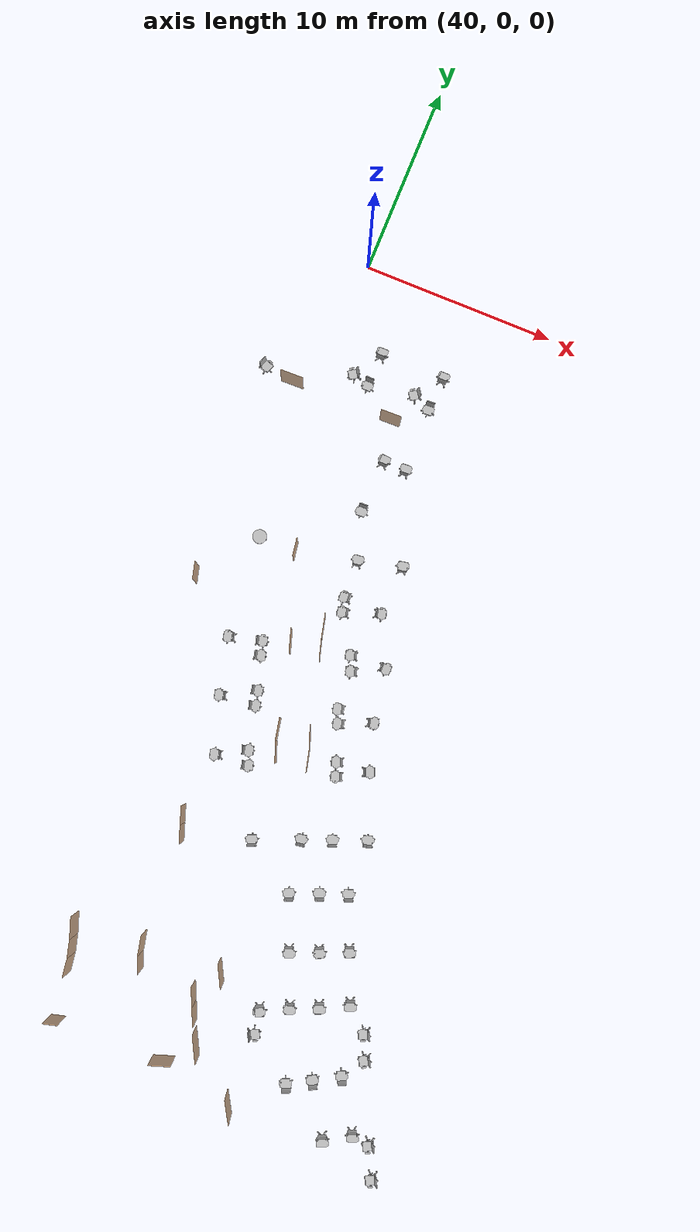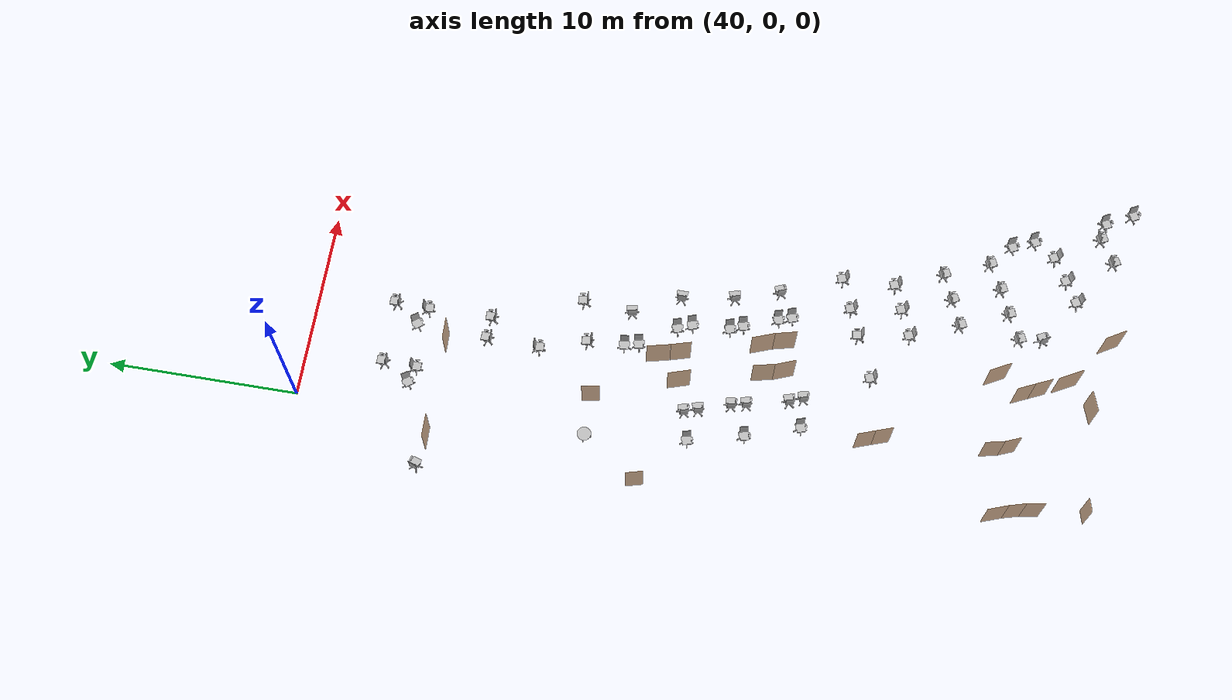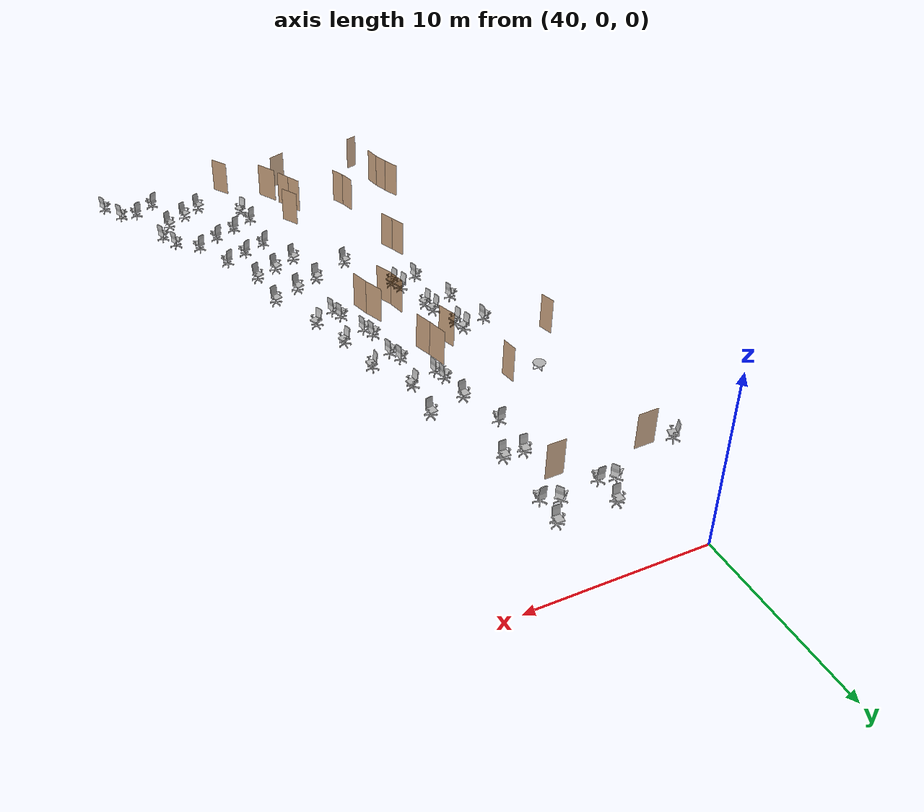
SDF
<sdf version="1.7">
 <world name="world">
  <include><uri>model://sun</uri></include>
  <include>
   <name>OpenRobotics/OfficeChairBlue_85</name>
   <uri>model://OfficeChairBlue</uri>
   <pose>57.111681146748666 -41.9795819682517 0.0 0 0 -1.11</pose>
   <static>True</static>
  </include>
  <include>
   <name>OpenRobotics/OfficeChairBlue_86</name>
   <uri>model://OfficeChairBlue</uri>
   <pose>56.39326485802381 -40.56363162704247 0.0 0 0 -1.0903</pose>
   <static>True</static>
  </include>
  <include>
   <name>OpenRobotics/OfficeChairBlue_87</name>
   <uri>model://OfficeChairBlue</uri>
   <pose>54.35365418178308 -41.21535948390257 0.0 0 0 0.4537</pose>
   <static>True</static>
  </include>
  <include>
   <name>OpenRobotics/OfficeChairBlue_88</name>
   <uri>model://OfficeChairBlue</uri>
   <pose>49.415005310909876 -37.72061620597989 0.0 0 0 2.0531</pose>
   <static>True</static>
  </include>
  <include>
   <name>OpenRobotics/OfficeChairBlue_89</name>
   <uri>model://OfficeChairBlue</uri>
   <pose>50.50323926724837 -36.04217840062959 0.0 0 0 0.344</pose>
   <static>True</static>
  </include>
  <include>
   <name>OpenRobotics/OfficeChairBlue_90</name>
   <uri>model://OfficeChairBlue</uri>
   <pose>51.8404882772502 -35.47959299309712 0.0 0 0 0.4023</pose>
   <static>True</static>
  </include>
  <include>
   <name>OpenRobotics/OfficeChairBlue_91</name>
   <uri>model://OfficeChairBlue</uri>
   <pose>54.717858345031 -36.91833416203117 0.0 0 0 -1.0804</pose>
   <static>True</static>
  </include>
  <include>
   <name>OpenRobotics/OfficeChairBlue_92</name>
   <uri>model://OfficeChairBlue</uri>
   <pose>54.00775004276741 -37.923488253757014 0.0 0 0 -2.6898</pose>
   <static>True</static>
  </include>
  <include>
   <name>OpenRobotics/OfficeChairBlue_93</name>
   <uri>model://OfficeChairBlue</uri>
   <pose>52.771993191697796 -38.6429149732677 0.0 0 0 -2.6684</pose>
   <static>True</static>
  </include>
  <include>
   <name>OpenRobotics/OfficeChairBlue_94</name>
   <uri>model://OfficeChairBlue</uri>
   <pose>49.45778021417666 -33.55505915635365 0.0 0 0 0.4189</pose>
   <static>True</static>
  </include>
  <include>
   <name>OpenRobotics/OfficeChairBlue_95</name>
   <uri>model://OfficeChairBlue</uri>
   <pose>50.84644892416849 -33.01290690471241 0.0 0 0 0.4432</pose>
   <static>True</static>
  </include>
  <include>
   <name>OpenRobotics/OfficeChairBlue_96</name>
   <uri>model://OfficeChairBlue</uri>
   <pose>52.19537402325103 -32.43101104216186 0.0 0 0 0.4397</pose>
   <static>True</static>
  </include>
  <include>
   <name>OpenRobotics/OfficeChairBlue_97</name>
   <uri>model://OfficeChairBlue</uri>
   <pose>48.320484229681774 -30.830713217582392 0.0 0 0 -2.7725</pose>
   <static>True</static>
  </include>
  <include>
   <name>OpenRobotics/OfficeChairBlue_98</name>
   <uri>model://OfficeChairBlue</uri>
   <pose>49.709040669586294 -30.26206522533495 0.0 0 0 -2.7775</pose>
   <static>True</static>
  </include>
  <include>
   <name>OpenRobotics/OfficeChairBlue_99</name>
   <uri>model://OfficeChairBlue</uri>
   <pose>51.04483016845304 -29.75954431451569 0.0 0 0 -2.7813</pose>
   <static>True</static>
  </include>
  <include>
   <name>OpenRobotics/OfficeChairBlue_100</name>
   <uri>model://OfficeChairBlue</uri>
   <pose>49.316993524684406 -27.619339640041254 0.0 0 0 -2.7998</pose>
   <static>True</static>
  </include>
  <include>
   <name>OpenRobotics/OfficeChairBlue_101</name>
   <uri>model://OfficeChairBlue</uri>
   <pose>50.946257031791 -26.985799537326088 0.0 0 0 -2.8187</pose>
   <static>True</static>
  </include>
  <include>
   <name>OpenRobotics/OfficeChairBlue_102</name>
   <uri>model://OfficeChairBlue</uri>
   <pose>47.895991029546025 -28.16239005238101 0.0 0 0 -2.9932</pose>
   <static>True</static>
  </include>
  <include>
   <name>OpenRobotics/OfficeChairBlue_103</name>
   <uri>model://OfficeChairBlue</uri>
   <pose>45.633187419724266 -29.10377473451227 0.0 0 0 -2.7887</pose>
   <static>True</static>
  </include>
  <include>
   <name>OpenRobotics/OfficeChairBlue_133</name>
   <uri>model://OfficeChairBlue</uri>
   <pose>42.39733896314859 -3.9757083319775814 0.0 0 0 -3.1416</pose>
   <static>True</static>
  </include>
  <include>
   <name>OpenRobotics/OfficeChairBlue_134</name>
   <uri>model://OfficeChairBlue</uri>
   <pose>45.758593107254455 -3.9657162942065995 0.0 0 0 3.1378</pose>
   <static>True</static>
  </include>
  <include>
   <name>OpenRobotics/OfficeChairBlue_135</name>
   <uri>model://OfficeChairBlue</uri>
   <pose>47.40873885060152 -16.38177752039356 0.0 0 0 1.7846</pose>
   <static>True</static>
  </include>
  <include>
   <name>OpenRobotics/OfficeChairBlue_136</name>
   <uri>model://OfficeChairBlue</uri>
   <pose>49.82467885952013 -23.873560446883566 0.0 0 0 1.9757</pose>
   <static>True</static>
  </include>
  <include>
   <name>OpenRobotics/OfficeChairBlue_137</name>
   <uri>model://OfficeChairBlue</uri>
   <pose>49.107834352017676 -21.567532853445762 0.0 0 0 1.8417</pose>
   <static>True</static>
  </include>
  <include>
   <name>OpenRobotics/OfficeChairBlue_138</name>
   <uri>model://OfficeChairBlue</uri>
   <pose>48.658641732672756 -18.860925588470174 0.0 0 0 1.5708</pose>
   <static>True</static>
  </include>
  <include>
   <name>OpenRobotics/OfficeChairBlue_139</name>
   <uri>model://OfficeChairBlue</uri>
   <pose>40.666358756935146 -20.343227551282215 0.0 0 0 -1.3468</pose>
   <static>True</static>
  </include>
  <include>
   <name>OpenRobotics/OfficeChairBlue_140</name>
   <uri>model://OfficeChairBlue</uri>
   <pose>41.3839891550488 -23.201736244394187 0.0 0 0 -1.312</pose>
   <static>True</static>
  </include>
  <include>
   <name>OpenRobotics/OfficeChairBlue_141</name>
   <uri>model://OfficeChairBlue</uri>
   <pose>42.30494068128884 -26.000517251054898 0.0 0 0 -1.2952</pose>
   <static>True</static>
  </include>
  <include>
   <name>OpenRobotics/OfficeChairBlue_142</name>
   <uri>model://OfficeChairBlue</uri>
   <pose>44.58267621272341 -9.063676418978936 0.0 0 0 3.0971</pose>
   <static>True</static>
  </include>
  <include>
   <name>OpenRobotics/OfficeChairBlue_143</name>
   <uri>model://OfficeChairBlue</uri>
   <pose>45.7511832814917 -9.097357445173259 0.0 0 0 -3.1278</pose>
   <static>True</static>
  </include>
  <include>
   <name>OpenRobotics/OfficeChairBlue_144</name>
   <uri>model://OfficeChairBlue</uri>
   <pose>44.49274787278458 -12.018737387181297 0.0 0 0 0.0186</pose>
   <static>True</static>
  </include>
  <include>
   <name>OpenRobotics/OfficeChairBlue_145</name>
   <uri>model://OfficeChairBlue</uri>
   <pose>45.24978507154558 -14.284684559447859 0.0 0 0 -3.0086</pose>
   <static>True</static>
  </include>
  <include>
   <name>OpenRobotics/OfficeChairBlue_146</name>
   <uri>model://OfficeChairBlue</uri>
   <pose>47.46071990102809 -13.726140875058713 0.0 0 0 -2.9772</pose>
   <static>True</static>
  </include>
  <include>
   <name>OpenRobotics/OfficeChairBlue_165</name>
   <uri>model://OfficeChairBlue</uri>
   <pose>37.277822981611884 -6.9048349100103135 0.0 0 0 1.2406</pose>
   <static>True</static>
  </include>
  <include>
   <name>OpenRobotics/CoffeeTable_3</name>
   <uri>model://CoffeeTable</uri>
   <pose>40.225474124051495 -15.07675002545096 0.0 0 0 1.5708</pose>
   <static>True</static>
  </include>
  <include>
   <name>OpenRobotics/OfficeChairBlue_180</name>
   <uri>model://OfficeChairBlue</uri>
   <pose>41.40509593146391 -5.639214215715066 0.0 0 0 -0.9828</pose>
   <static>True</static>
  </include>
  <include>
   <name>OpenRobotics/OfficeChairBlue_181</name>
   <uri>model://OfficeChairBlue</uri>
   <pose>42.352543198310144 -5.931677793169082 0.0 0 0 -0.019</pose>
   <static>True</static>
  </include>
  <include>
   <name>OpenRobotics/OfficeChairBlue_182</name>
   <uri>model://OfficeChairBlue</uri>
   <pose>44.66856282951893 -5.47552442841067 0.0 0 0 -0.9531</pose>
   <static>True</static>
  </include>
  <include>
   <name>OpenRobotics/OfficeChairBlue_183</name>
   <uri>model://OfficeChairBlue</uri>
   <pose>45.674502811855966 -5.931677793169082 0.0 0 0 0.0478</pose>
   <static>True</static>
  </include>
  <include>
   <name>OpenRobotics/OfficeChairBlue_184</name>
   <uri>model://OfficeChairBlue</uri>
   <pose>45.28077161564436 -16.319804432196012 0.0 0 0 -1.4944</pose>
   <static>True</static>
  </include>
  <include>
   <name>OpenRobotics/OfficeChairBlue_185</name>
   <uri>model://OfficeChairBlue</uri>
   <pose>45.46669088023701 -17.063481490566605 0.0 0 0 -1.3668</pose>
   <static>True</static>
  </include>
  <include>
   <name>OpenRobotics/OfficeChairBlue_186</name>
   <uri>model://OfficeChairBlue</uri>
   <pose>46.67078756668397 -18.911222587587023 0.0 0 0 -1.3102</pose>
   <static>True</static>
  </include>
  <include>
   <name>OpenRobotics/OfficeChairBlue_187</name>
   <uri>model://OfficeChairBlue</uri>
   <pose>46.97953030679857 -19.65725731779122 0.0 0 0 -1.2809</pose>
   <static>True</static>
  </include>
  <include>
   <name>OpenRobotics/OfficeChairBlue_188</name>
   <uri>model://OfficeChairBlue</uri>
   <pose>47.09528076681972 -21.62523967832536 0.0 0 0 -1.3316</pose>
   <static>True</static>
  </include>
  <include>
   <name>OpenRobotics/OfficeChairBlue_189</name>
   <uri>model://OfficeChairBlue</uri>
   <pose>47.365402596898164 -22.294032588457252 0.0 0 0 -1.287</pose>
   <static>True</static>
  </include>
  <include>
   <name>OpenRobotics/OfficeChairBlue_190</name>
   <uri>model://OfficeChairBlue</uri>
   <pose>48.021396717076215 -24.069022668897937 0.0 0 0 -1.2641</pose>
   <static>True</static>
  </include>
  <include>
   <name>OpenRobotics/OfficeChairBlue_191</name>
   <uri>model://OfficeChairBlue</uri>
   <pose>48.25289763711851 -24.750838909158297 0.0 0 0 -1.2566</pose>
   <static>True</static>
  </include>
  <include>
   <name>OpenRobotics/OfficeChairBlue_192</name>
   <uri>model://OfficeChairBlue</uri>
   <pose>42.42619237558839 -19.875959447879676 0.0 0 0 1.8417</pose>
   <static>True</static>
  </include>
  <include>
   <name>OpenRobotics/OfficeChairBlue_193</name>
   <uri>model://OfficeChairBlue</uri>
   <pose>42.63198344563568 -20.59617205800156 0.0 0 0 1.7943</pose>
   <static>True</static>
  </include>
  <include>
   <name>OpenRobotics/OfficeChairBlue_194</name>
   <uri>model://OfficeChairBlue</uri>
   <pose>43.17222710579259 -22.25552394850841 0.0 0 0 1.7455</pose>
   <static>True</static>
  </include>
  <include>
   <name>OpenRobotics/OfficeChairBlue_195</name>
   <uri>model://OfficeChairBlue</uri>
   <pose>43.33939726580373 -23.001446408625295 0.0 0 0 1.8158</pose>
   <static>True</static>
  </include>
  <include>
   <name>OpenRobotics/OfficeChairBlue_196</name>
   <uri>model://OfficeChairBlue</uri>
   <pose>43.86684213600679 -25.16242104925289 0.0 0 0 1.8623</pose>
   <static>True</static>
  </include>
  <include>
   <name>OpenRobotics/OfficeChairBlue_197</name>
   <uri>model://OfficeChairBlue</uri>
   <pose>44.13696396608524 -25.85692380937978 0.0 0 0 1.8314</pose>
   <static>True</static>
  </include>
  <include>
   <name>OpenRobotics/OfficeChairBlue_198</name>
   <uri>model://OfficeChairBlue</uri>
   <pose>49.184402551566095 -36.69693754984718 0.0 0 0 0.406</pose>
   <static>True</static>
  </include>
  <include>
   <name>OpenRobotics/OfficeChairBlue_199</name>
   <uri>model://OfficeChairBlue</uri>
   <pose>53.186943434411816 -34.78789698515309 0.0 0 0 0.3858</pose>
   <static>True</static>
  </include>
  <include>
   <name>OpenRobotics/OfficeChairBlue_200</name>
   <uri>model://OfficeChairBlue</uri>
   <pose>54.21994050779163 -35.765544905486905 0.0 0 0 -1.141</pose>
   <static>True</static>
  </include>
  <include>
   <name>OpenRobotics/OfficeChairBlue_201</name>
   <uri>model://OfficeChairBlue</uri>
   <pose>51.63885120043354 -39.28015998886424 0.0 0 0 -2.6802</pose>
   <static>True</static>
  </include>
  <include>
   <name>OpenRobotics/OfficeChairBlue_207</name>
   <uri>model://OfficeChairBlue</uri>
   <pose>55.610180999005856 -40.46921248361107 0.0 0 0 0.422</pose>
   <static>True</static>
  </include>
  <model name="door_24">
   <pose>40.148232303979185 -40.654626532810795 0.0 0 0 0.26191786335359124</pose>
   <link name="right">
    <pose>0 0 1.11 0 0 0</pose>
    <visual name="right_visual">
     <geometry><box><size>0.7101873379706063 0.03 2.2</size></box></geometry>
     <material><ambient>0.5 0.25 0 0.6</ambient><diffuse>0.5 0.25 0 0.6</diffuse></material>
    </visual>
    <collision name="right_collision">
     <geometry><box><size>0.7101873379706063 0.03 2.2</size></box></geometry>
     <surface><contact><collide_bitmask>0x02</collide_bitmask></contact></surface>
    </collision>
    <inertial>
     <mass>50.0</mass>
     <inertia><ixx>20.17041666666667</ixx><iyy>22.268191895890737</iyy><izz>2.1052752292240675</izz></inertia>
    </inertial>
   </link>
   <joint name="right_joint" type="revolute">
    <parent>world</parent>
    <child>right</child>
    <axis><xyz>0 0 -1</xyz><limit><lower>0</lower><upper>1.57</upper></limit></axis>
    <pose>0.36009366898530315 0 0 0 0 0</pose>
   </joint>
   <plugin name="door" filename="libdoor.so">
    <v_max_door>0.5</v_max_door>
    <a_max_door>0.3</a_max_door>
    <a_nom_door>0.15</a_nom_door>
    <dx_min_door>0.01</dx_min_door>
    <f_max_door>500.0</f_max_door>
    <door name="door_24" type="SwingDoor" left_joint_name="empty_joint" right_joint_name="right_joint"/>
   </plugin>
  </model>
  <model name="door_25">
   <pose>39.76634560197925 -37.99208527710611 0.0 0 0 -1.4198516233371643</pose>
   <link name="right">
    <pose>0 0 1.11 0 0 0</pose>
    <visual name="right_visual">
     <geometry><box><size>0.9464136126741728 0.03 2.2</size></box></geometry>
     <material><ambient>0.5 0.25 0 0.6</ambient><diffuse>0.5 0.25 0 0.6</diffuse></material>
    </visual>
    <collision name="right_collision">
     <geometry><box><size>0.9464136126741728 0.03 2.2</size></box></geometry>
     <surface><contact><collide_bitmask>0x02</collide_bitmask></contact></surface>
    </collision>
    <inertial>
     <mass>50.0</mass>
     <inertia><ixx>20.17041666666667</ixx><iyy>23.898744692729085</iyy><izz>3.7358280260624133</izz></inertia>
    </inertial>
   </link>
   <joint name="right_joint" type="revolute">
    <parent>world</parent>
    <child>right</child>
    <axis><xyz>0 0 -1</xyz><limit><lower>0</lower><upper>1.57</upper></limit></axis>
    <pose>0.4782068063370864 0 0 0 0 0</pose>
   </joint>
   <plugin name="door" filename="libdoor.so">
    <v_max_door>0.5</v_max_door>
    <a_max_door>0.3</a_max_door>
    <a_nom_door>0.15</a_nom_door>
    <dx_min_door>0.01</dx_min_door>
    <f_max_door>500.0</f_max_door>
    <door name="door_25" type="SwingDoor" left_joint_name="empty_joint" right_joint_name="right_joint"/>
   </plugin>
  </model>
  <model name="door_26">
   <pose>39.57110792013951 -37.08769358874495 0.0 0 0 -1.2924794906765693</pose>
   <link name="right">
    <pose>0 0 1.11 0 0 0</pose>
    <visual name="right_visual">
     <geometry><box><size>0.8877924473050325 0.03 2.2</size></box></geometry>
     <material><ambient>0.5 0.25 0 0.6</ambient><diffuse>0.5 0.25 0 0.6</diffuse></material>
    </visual>
    <collision name="right_collision">
     <geometry><box><size>0.8877924473050325 0.03 2.2</size></box></geometry>
     <surface><contact><collide_bitmask>0x02</collide_bitmask></contact></surface>
    </collision>
    <inertial>
     <mass>50.0</mass>
     <inertia><ixx>20.17041666666667</ixx><iyy>23.450730956216084</iyy><izz>3.2878142895494125</izz></inertia>
    </inertial>
   </link>
   <joint name="right_joint" type="revolute">
    <parent>world</parent>
    <child>right</child>
    <axis><xyz>0 0 -1</xyz><limit><lower>0</lower><upper>1.57</upper></limit></axis>
    <pose>0.44889622365251625 0 0 0 0 0</pose>
   </joint>
   <plugin name="door" filename="libdoor.so">
    <v_max_door>0.5</v_max_door>
    <a_max_door>0.3</a_max_door>
    <a_nom_door>0.15</a_nom_door>
    <dx_min_door>0.01</dx_min_door>
    <f_max_door>500.0</f_max_door>
    <door name="door_26" type="SwingDoor" left_joint_name="empty_joint" right_joint_name="right_joint"/>
   </plugin>
  </model>
  <model name="door_27">
   <pose>39.2619722347193 -36.14804909296707 0.0 0 0 -1.2201634581755956</pose>
   <link name="right">
    <pose>0 0 1.11 0 0 0</pose>
    <visual name="right_visual">
     <geometry><box><size>1.0718701199621685 0.03 2.2</size></box></geometry>
     <material><ambient>0.5 0.25 0 0.6</ambient><diffuse>0.5 0.25 0 0.6</diffuse></material>
    </visual>
    <collision name="right_collision">
     <geometry><box><size>1.0718701199621685 0.03 2.2</size></box></geometry>
     <surface><contact><collide_bitmask>0x02</collide_bitmask></contact></surface>
    </collision>
    <inertial>
     <mass>50.0</mass>
     <inertia><ixx>20.17041666666667</ixx><iyy>24.953773141948812</iyy><izz>4.79085647528214</izz></inertia>
    </inertial>
   </link>
   <joint name="right_joint" type="revolute">
    <parent>world</parent>
    <child>right</child>
    <axis><xyz>0 0 -1</xyz><limit><lower>0</lower><upper>1.57</upper></limit></axis>
    <pose>0.5409350599810843 0 0 0 0 0</pose>
   </joint>
   <plugin name="door" filename="libdoor.so">
    <v_max_door>0.5</v_max_door>
    <a_max_door>0.3</a_max_door>
    <a_nom_door>0.15</a_nom_door>
    <dx_min_door>0.01</dx_min_door>
    <f_max_door>500.0</f_max_door>
    <door name="door_27" type="SwingDoor" left_joint_name="empty_joint" right_joint_name="right_joint"/>
   </plugin>
  </model>
  <model name="door_28">
   <pose>42.921415730732214 -36.543015260139136 0.0 0 0 -1.1813873937368389</pose>
   <link name="right">
    <pose>0 0 1.11 0 0 0</pose>
    <visual name="right_visual">
     <geometry><box><size>0.8564785392661566 0.03 2.2</size></box></geometry>
     <material><ambient>0.5 0.25 0 0.6</ambient><diffuse>0.5 0.25 0 0.6</diffuse></material>
    </visual>
    <collision name="right_collision">
     <geometry><box><size>0.8564785392661566 0.03 2.2</size></box></geometry>
     <surface><contact><collide_bitmask>0x02</collide_bitmask></contact></surface>
    </collision>
    <inertial>
     <mass>50.0</mass>
     <inertia><ixx>20.17041666666667</ixx><iyy>23.223147867597877</iyy><izz>3.060231200931206</izz></inertia>
    </inertial>
   </link>
   <joint name="right_joint" type="revolute">
    <parent>world</parent>
    <child>right</child>
    <axis><xyz>0 0 -1</xyz><limit><lower>0</lower><upper>1.57</upper></limit></axis>
    <pose>0.4332392696330783 0 0 0 0 0</pose>
   </joint>
   <plugin name="door" filename="libdoor.so">
    <v_max_door>0.5</v_max_door>
    <a_max_door>0.3</a_max_door>
    <a_nom_door>0.15</a_nom_door>
    <dx_min_door>0.01</dx_min_door>
    <f_max_door>500.0</f_max_door>
    <door name="door_28" type="SwingDoor" left_joint_name="empty_joint" right_joint_name="right_joint"/>
   </plugin>
  </model>
  <model name="door_29">
   <pose>42.64770125785971 -35.66191961489571 0.0 0 0 -1.3471580784708599</pose>
   <link name="right">
    <pose>0 0 1.11 0 0 0</pose>
    <visual name="right_visual">
     <geometry><box><size>0.9751151718391351 0.03 2.2</size></box></geometry>
     <material><ambient>0.5 0.25 0 0.6</ambient><diffuse>0.5 0.25 0 0.6</diffuse></material>
    </visual>
    <collision name="right_collision">
     <geometry><box><size>0.9751151718391351 0.03 2.2</size></box></geometry>
     <surface><contact><collide_bitmask>0x02</collide_bitmask></contact></surface>
    </collision>
    <inertial>
     <mass>50.0</mass>
     <inertia><ixx>20.17041666666667</ixx><iyy>24.128539993128616</iyy><izz>3.9656233264619423</izz></inertia>
    </inertial>
   </link>
   <joint name="right_joint" type="revolute">
    <parent>world</parent>
    <child>right</child>
    <axis><xyz>0 0 -1</xyz><limit><lower>0</lower><upper>1.57</upper></limit></axis>
    <pose>0.49255758591956755 0 0 0 0 0</pose>
   </joint>
   <plugin name="door" filename="libdoor.so">
    <v_max_door>0.5</v_max_door>
    <a_max_door>0.3</a_max_door>
    <a_nom_door>0.15</a_nom_door>
    <dx_min_door>0.01</dx_min_door>
    <f_max_door>500.0</f_max_door>
    <door name="door_29" type="SwingDoor" left_joint_name="empty_joint" right_joint_name="right_joint"/>
   </plugin>
  </model>
  <model name="door_30">
   <pose>45.68819976250832 -40.45349467138705 0.0 0 0 0.33027510875429644</pose>
   <link name="right">
    <pose>0 0 1.11 0 0 0</pose>
    <visual name="right_visual">
     <geometry><box><size>1.0811863564722064 0.03 2.2</size></box></geometry>
     <material><ambient>0.5 0.25 0 0.6</ambient><diffuse>0.5 0.25 0 0.6</diffuse></material>
    </visual>
    <collision name="right_collision">
     <geometry><box><size>1.0811863564722064 0.03 2.2</size></box></geometry>
     <surface><contact><collide_bitmask>0x02</collide_bitmask></contact></surface>
    </collision>
    <inertial>
     <mass>50.0</mass>
     <inertia><ixx>20.17041666666667</ixx><iyy>25.037349739256857</iyy><izz>4.874433072590187</izz></inertia>
    </inertial>
   </link>
   <joint name="right_joint" type="revolute">
    <parent>world</parent>
    <child>right</child>
    <axis><xyz>0 0 -1</xyz><limit><lower>0</lower><upper>1.57</upper></limit></axis>
    <pose>0.5455931782361032 0 0 0 0 0</pose>
   </joint>
   <plugin name="door" filename="libdoor.so">
    <v_max_door>0.5</v_max_door>
    <a_max_door>0.3</a_max_door>
    <a_nom_door>0.15</a_nom_door>
    <dx_min_door>0.01</dx_min_door>
    <f_max_door>500.0</f_max_door>
    <door name="door_30" type="SwingDoor" left_joint_name="empty_joint" right_joint_name="right_joint"/>
   </plugin>
  </model>
  <model name="double_hinged_7">
   <pose>46.08198709376359 -37.37336482591644 0.0 0 0 -1.1332813390866554</pose>
   <link name="right">
    <pose>0.47173381862602615 0 1.11 0 0 0</pose>
    <visual name="right_visual">
     <geometry><box><size>0.9334676372520523 0.03 2.2</size></box></geometry>
     <material><ambient>0.5 0.25 0 0.6</ambient><diffuse>0.5 0.25 0 0.6</diffuse></material>
    </visual>
    <collision name="right_collision">
     <geometry><box><size>0.9334676372520523 0.03 2.2</size></box></geometry>
     <surface><contact><collide_bitmask>0x02</collide_bitmask></contact></surface>
    </collision>
    <inertial>
     <mass>50.0</mass>
     <inertia><ixx>20.17041666666667</ixx><iyy>23.79734095748721</iyy><izz>3.6344242908205384</izz></inertia>
    </inertial>
   </link>
   <joint name="right_joint" type="revolute">
    <parent>world</parent>
    <child>right</child>
    <axis><xyz>0 0 -1</xyz><limit><lower>0</lower><upper>1.57</upper></limit></axis>
    <pose>0.47173381862602615 0 0 0 0 0</pose>
   </joint>
   <link name="left">
    <pose>-0.47173381862602615 0 1.11 0 0 0</pose>
    <visual name="left_visual">
     <geometry><box><size>0.9334676372520523 0.03 2.2</size></box></geometry>
     <material><ambient>0.5 0.25 0 0.6</ambient><diffuse>0.5 0.25 0 0.6</diffuse></material>
    </visual>
    <collision name="left_collision">
     <geometry><box><size>0.9334676372520523 0.03 2.2</size></box></geometry>
     <surface><contact><collide_bitmask>0x02</collide_bitmask></contact></surface>
    </collision>
    <inertial>
     <mass>50.0</mass>
     <inertia><ixx>20.17041666666667</ixx><iyy>23.79734095748721</iyy><izz>3.6344242908205384</izz></inertia>
    </inertial>
   </link>
   <joint name="left_joint" type="revolute">
    <parent>world</parent>
    <child>left</child>
    <axis><xyz>0 0 -1</xyz><limit><lower>-1.57</lower><upper>0</upper></limit></axis>
    <pose>-0.47173381862602615 0 0 0 0 0</pose>
   </joint>
   <plugin name="door" filename="libdoor.so">
    <v_max_door>0.5</v_max_door>
    <a_max_door>0.3</a_max_door>
    <a_nom_door>0.15</a_nom_door>
    <dx_min_door>0.01</dx_min_door>
    <f_max_door>500.0</f_max_door>
    <door name="double_hinged_7" type="DoubleSwingDoor" left_joint_name="left_joint" right_joint_name="right_joint"/>
   </plugin>
  </model>
  <model name="door_32">
   <pose>46.728101446257966 -35.56087653631275 0.0 0 0 -1.0776401025189377</pose>
   <link name="right">
    <pose>0 0 1.11 0 0 0</pose>
    <visual name="right_visual">
     <geometry><box><size>1.1812181377286841 0.03 2.2</size></box></geometry>
     <material><ambient>0.5 0.25 0 0.6</ambient><diffuse>0.5 0.25 0 0.6</diffuse></material>
    </visual>
    <collision name="right_collision">
     <geometry><box><size>1.1812181377286841 0.03 2.2</size></box></geometry>
     <surface><contact><collide_bitmask>0x02</collide_bitmask></contact></surface>
    </collision>
    <inertial>
     <mass>50.0</mass>
     <inertia><ixx>20.17041666666667</ixx><iyy>25.980317870413426</iyy><izz>5.817401203746752</izz></inertia>
    </inertial>
   </link>
   <joint name="right_joint" type="revolute">
    <parent>world</parent>
    <child>right</child>
    <axis><xyz>0 0 -1</xyz><limit><lower>0</lower><upper>1.57</upper></limit></axis>
    <pose>0.5956090688643421 0 0 0 0 0</pose>
   </joint>
   <plugin name="door" filename="libdoor.so">
    <v_max_door>0.5</v_max_door>
    <a_max_door>0.3</a_max_door>
    <a_nom_door>0.15</a_nom_door>
    <dx_min_door>0.01</dx_min_door>
    <f_max_door>500.0</f_max_door>
    <door name="door_32" type="SwingDoor" left_joint_name="empty_joint" right_joint_name="right_joint"/>
   </plugin>
  </model>
  <model name="double_hinged_8">
   <pose>42.229046102264306 -29.668549408747367 0.0 0 0 -1.2271500658902923</pose>
   <link name="right">
    <pose>0.46417879300594933 0 1.11 0 0 0</pose>
    <visual name="right_visual">
     <geometry><box><size>0.9183575860118987 0.03 2.2</size></box></geometry>
     <material><ambient>0.5 0.25 0 0.6</ambient><diffuse>0.5 0.25 0 0.6</diffuse></material>
    </visual>
    <collision name="right_collision">
     <geometry><box><size>0.9183575860118987 0.03 2.2</size></box></geometry>
     <surface><contact><collide_bitmask>0x02</collide_bitmask></contact></surface>
    </collision>
    <inertial>
     <mass>50.0</mass>
     <inertia><ixx>20.17041666666667</ixx><iyy>23.680752732440013</iyy><izz>3.5178360657733414</izz></inertia>
    </inertial>
   </link>
   <joint name="right_joint" type="revolute">
    <parent>world</parent>
    <child>right</child>
    <axis><xyz>0 0 -1</xyz><limit><lower>0</lower><upper>1.57</upper></limit></axis>
    <pose>0.46417879300594933 0 0 0 0 0</pose>
   </joint>
   <link name="left">
    <pose>-0.46417879300594933 0 1.11 0 0 0</pose>
    <visual name="left_visual">
     <geometry><box><size>0.9183575860118987 0.03 2.2</size></box></geometry>
     <material><ambient>0.5 0.25 0 0.6</ambient><diffuse>0.5 0.25 0 0.6</diffuse></material>
    </visual>
    <collision name="left_collision">
     <geometry><box><size>0.9183575860118987 0.03 2.2</size></box></geometry>
     <surface><contact><collide_bitmask>0x02</collide_bitmask></contact></surface>
    </collision>
    <inertial>
     <mass>50.0</mass>
     <inertia><ixx>20.17041666666667</ixx><iyy>23.680752732440013</iyy><izz>3.5178360657733414</izz></inertia>
    </inertial>
   </link>
   <joint name="left_joint" type="revolute">
    <parent>world</parent>
    <child>left</child>
    <axis><xyz>0 0 -1</xyz><limit><lower>-1.57</lower><upper>0</upper></limit></axis>
    <pose>-0.46417879300594933 0 0 0 0 0</pose>
   </joint>
   <plugin name="door" filename="libdoor.so">
    <v_max_door>0.5</v_max_door>
    <a_max_door>0.3</a_max_door>
    <a_nom_door>0.15</a_nom_door>
    <dx_min_door>0.01</dx_min_door>
    <f_max_door>500.0</f_max_door>
    <door name="double_hinged_8" type="DoubleSwingDoor" left_joint_name="left_joint" right_joint_name="right_joint"/>
   </plugin>
  </model>
  <model name="door_33">
   <pose>49.47748361450034 -41.23281748247996 0.0 0 0 -1.0276265584311506</pose>
   <link name="right">
    <pose>0 0 1.11 0 0 0</pose>
    <visual name="right_visual">
     <geometry><box><size>1.1801427087608927 0.03 2.2</size></box></geometry>
     <material><ambient>0.5 0.25 0 0.6</ambient><diffuse>0.5 0.25 0 0.6</diffuse></material>
    </visual>
    <collision name="right_collision">
     <geometry><box><size>1.1801427087608927 0.03 2.2</size></box></geometry>
     <surface><contact><collide_bitmask>0x02</collide_bitmask></contact></surface>
    </collision>
    <inertial>
     <mass>50.0</mass>
     <inertia><ixx>20.17041666666667</ixx><iyy>25.969736721006246</iyy><izz>5.806820054339572</izz></inertia>
    </inertial>
   </link>
   <joint name="right_joint" type="revolute">
    <parent>world</parent>
    <child>right</child>
    <axis><xyz>0 0 -1</xyz><limit><lower>0</lower><upper>1.57</upper></limit></axis>
    <pose>0.5950713543804463 0 0 0 0 0</pose>
   </joint>
   <plugin name="door" filename="libdoor.so">
    <v_max_door>0.5</v_max_door>
    <a_max_door>0.3</a_max_door>
    <a_nom_door>0.15</a_nom_door>
    <dx_min_door>0.01</dx_min_door>
    <f_max_door>500.0</f_max_door>
    <door name="door_33" type="SwingDoor" left_joint_name="empty_joint" right_joint_name="right_joint"/>
   </plugin>
  </model>
  <model name="door_37">
   <pose>46.738205754116265 -24.50614625385656 0.0 0 0 -1.325793970915647</pose>
   <link name="right">
    <pose>0 0 1.11 0 0 0</pose>
    <visual name="right_visual">
     <geometry><box><size>1.139275329539751 0.03 2.2</size></box></geometry>
     <material><ambient>0.5 0.25 0 0.6</ambient><diffuse>0.5 0.25 0 0.6</diffuse></material>
    </visual>
    <collision name="right_collision">
     <geometry><box><size>1.139275329539751 0.03 2.2</size></box></geometry>
     <surface><contact><collide_bitmask>0x02</collide_bitmask></contact></surface>
    </collision>
    <inertial>
     <mass>50.0</mass>
     <inertia><ixx>20.17041666666667</ixx><iyy>25.574784485407957</iyy><izz>5.411867818741285</izz></inertia>
    </inertial>
   </link>
   <joint name="right_joint" type="revolute">
    <parent>world</parent>
    <child>right</child>
    <axis><xyz>0 0 -1</xyz><limit><lower>0</lower><upper>1.57</upper></limit></axis>
    <pose>0.5746376647698755 0 0 0 0 0</pose>
   </joint>
   <plugin name="door" filename="libdoor.so">
    <v_max_door>0.5</v_max_door>
    <a_max_door>0.3</a_max_door>
    <a_nom_door>0.15</a_nom_door>
    <dx_min_door>0.01</dx_min_door>
    <f_max_door>500.0</f_max_door>
    <door name="door_37" type="SwingDoor" left_joint_name="empty_joint" right_joint_name="right_joint"/>
   </plugin>
  </model>
  <model name="door_38">
   <pose>46.38545313977441 -23.381312249053572 0.0 0 0 -1.2110826593727007</pose>
   <link name="right">
    <pose>0 0 1.11 0 0 0</pose>
    <visual name="right_visual">
     <geometry><box><size>1.202304078936936 0.03 2.2</size></box></geometry>
     <material><ambient>0.5 0.25 0 0.6</ambient><diffuse>0.5 0.25 0 0.6</diffuse></material>
    </visual>
    <collision name="right_collision">
     <geometry><box><size>1.202304078936936 0.03 2.2</size></box></geometry>
     <surface><contact><collide_bitmask>0x02</collide_bitmask></contact></surface>
    </collision>
    <inertial>
     <mass>50.0</mass>
     <inertia><ixx>20.17041666666667</ixx><iyy>26.189729575951645</iyy><izz>6.026812909284975</izz></inertia>
    </inertial>
   </link>
   <joint name="right_joint" type="revolute">
    <parent>world</parent>
    <child>right</child>
    <axis><xyz>0 0 -1</xyz><limit><lower>0</lower><upper>1.57</upper></limit></axis>
    <pose>0.606152039468468 0 0 0 0 0</pose>
   </joint>
   <plugin name="door" filename="libdoor.so">
    <v_max_door>0.5</v_max_door>
    <a_max_door>0.3</a_max_door>
    <a_nom_door>0.15</a_nom_door>
    <dx_min_door>0.01</dx_min_door>
    <f_max_door>500.0</f_max_door>
    <door name="door_38" type="SwingDoor" left_joint_name="empty_joint" right_joint_name="right_joint"/>
   </plugin>
  </model>
  <model name="door_39">
   <pose>45.251356852767984 -19.273349754219623 0.0 0 0 -1.2866473559974911</pose>
   <link name="right">
    <pose>0 0 1.11 0 0 0</pose>
    <visual name="right_visual">
     <geometry><box><size>1.0656822283053253 0.03 2.2</size></box></geometry>
     <material><ambient>0.5 0.25 0 0.6</ambient><diffuse>0.5 0.25 0 0.6</diffuse></material>
    </visual>
    <collision name="right_collision">
     <geometry><box><size>1.0656822283053253 0.03 2.2</size></box></geometry>
     <surface><contact><collide_bitmask>0x02</collide_bitmask></contact></surface>
    </collision>
    <inertial>
     <mass>50.0</mass>
     <inertia><ixx>20.17041666666667</ixx><iyy>24.898660882190853</iyy><izz>4.735744215524181</izz></inertia>
    </inertial>
   </link>
   <joint name="right_joint" type="revolute">
    <parent>world</parent>
    <child>right</child>
    <axis><xyz>0 0 -1</xyz><limit><lower>0</lower><upper>1.57</upper></limit></axis>
    <pose>0.5378411141526627 0 0 0 0 0</pose>
   </joint>
   <plugin name="door" filename="libdoor.so">
    <v_max_door>0.5</v_max_door>
    <a_max_door>0.3</a_max_door>
    <a_nom_door>0.15</a_nom_door>
    <dx_min_door>0.01</dx_min_door>
    <f_max_door>500.0</f_max_door>
    <door name="door_39" type="SwingDoor" left_joint_name="empty_joint" right_joint_name="right_joint"/>
   </plugin>
  </model>
  <model name="door_40">
   <pose>44.95524449747626 -18.153231093083843 0.0 0 0 -1.3346080197080052</pose>
   <link name="right">
    <pose>0 0 1.11 0 0 0</pose>
    <visual name="right_visual">
     <geometry><box><size>1.2321759012741735 0.03 2.2</size></box></geometry>
     <material><ambient>0.5 0.25 0 0.6</ambient><diffuse>0.5 0.25 0 0.6</diffuse></material>
    </visual>
    <collision name="right_collision">
     <geometry><box><size>1.2321759012741735 0.03 2.2</size></box></geometry>
     <surface><contact><collide_bitmask>0x02</collide_bitmask></contact></surface>
    </collision>
    <inertial>
     <mass>50.0</mass>
     <inertia><ixx>20.17041666666667</ixx><iyy>26.49273938200343</iyy><izz>6.329822715336758</izz></inertia>
    </inertial>
   </link>
   <joint name="right_joint" type="revolute">
    <parent>world</parent>
    <child>right</child>
    <axis><xyz>0 0 -1</xyz><limit><lower>0</lower><upper>1.57</upper></limit></axis>
    <pose>0.6210879506370868 0 0 0 0 0</pose>
   </joint>
   <plugin name="door" filename="libdoor.so">
    <v_max_door>0.5</v_max_door>
    <a_max_door>0.3</a_max_door>
    <a_nom_door>0.15</a_nom_door>
    <dx_min_door>0.01</dx_min_door>
    <f_max_door>500.0</f_max_door>
    <door name="door_40" type="SwingDoor" left_joint_name="empty_joint" right_joint_name="right_joint"/>
   </plugin>
  </model>
  <model name="door_41">
   <pose>43.71701770448573 -19.415090739454058 0.0 0 0 1.8804886161120296</pose>
   <link name="right">
    <pose>0 0 1.11 0 0 0</pose>
    <visual name="right_visual">
     <geometry><box><size>1.1942400486458653 0.03 2.2</size></box></geometry>
     <material><ambient>0.5 0.25 0 0.6</ambient><diffuse>0.5 0.25 0 0.6</diffuse></material>
    </visual>
    <collision name="right_collision">
     <geometry><box><size>1.1942400486458653 0.03 2.2</size></box></geometry>
     <surface><contact><collide_bitmask>0x02</collide_bitmask></contact></surface>
    </collision>
    <inertial>
     <mass>50.0</mass>
     <inertia><ixx>20.17041666666667</ixx><iyy>26.109205390790333</iyy><izz>5.946288724123661</izz></inertia>
    </inertial>
   </link>
   <joint name="right_joint" type="revolute">
    <parent>world</parent>
    <child>right</child>
    <axis><xyz>0 0 -1</xyz><limit><lower>0</lower><upper>1.57</upper></limit></axis>
    <pose>0.6021200243229327 0 0 0 0 0</pose>
   </joint>
   <plugin name="door" filename="libdoor.so">
    <v_max_door>0.5</v_max_door>
    <a_max_door>0.3</a_max_door>
    <a_nom_door>0.15</a_nom_door>
    <dx_min_door>0.01</dx_min_door>
    <f_max_door>500.0</f_max_door>
    <door name="door_41" type="SwingDoor" left_joint_name="empty_joint" right_joint_name="right_joint"/>
   </plugin>
  </model>
  <model name="door_42">
   <pose>44.79879613080364 -23.632348164288572 0.0 0 0 1.7744431524869586</pose>
   <link name="right">
    <pose>0 0 1.11 0 0 0</pose>
    <visual name="right_visual">
     <geometry><box><size>1.1135772313813315 0.03 2.2</size></box></geometry>
     <material><ambient>0.5 0.25 0 0.6</ambient><diffuse>0.5 0.25 0 0.6</diffuse></material>
    </visual>
    <collision name="right_collision">
     <geometry><box><size>1.1135772313813315 0.03 2.2</size></box></geometry>
     <surface><contact><collide_bitmask>0x02</collide_bitmask></contact></surface>
    </collision>
    <inertial>
     <mass>50.0</mass>
     <inertia><ixx>20.17041666666667</ixx><iyy>25.333559376045468</iyy><izz>5.170642709378798</izz></inertia>
    </inertial>
   </link>
   <joint name="right_joint" type="revolute">
    <parent>world</parent>
    <child>right</child>
    <axis><xyz>0 0 -1</xyz><limit><lower>0</lower><upper>1.57</upper></limit></axis>
    <pose>0.5617886156906657 0 0 0 0 0</pose>
   </joint>
   <plugin name="door" filename="libdoor.so">
    <v_max_door>0.5</v_max_door>
    <a_max_door>0.3</a_max_door>
    <a_nom_door>0.15</a_nom_door>
    <dx_min_door>0.01</dx_min_door>
    <f_max_door>500.0</f_max_door>
    <door name="door_42" type="SwingDoor" left_joint_name="empty_joint" right_joint_name="right_joint"/>
   </plugin>
  </model>
  <model name="door_43">
   <pose>45.11753090868922 -24.700373504910473 0.0 0 0 1.9479340119170223</pose>
   <link name="right">
    <pose>0 0 1.11 0 0 0</pose>
    <visual name="right_visual">
     <geometry><box><size>1.1039792055864015 0.03 2.2</size></box></geometry>
     <material><ambient>0.5 0.25 0 0.6</ambient><diffuse>0.5 0.25 0 0.6</diffuse></material>
    </visual>
    <collision name="right_collision">
     <geometry><box><size>1.1039792055864015 0.03 2.2</size></box></geometry>
     <surface><contact><collide_bitmask>0x02</collide_bitmask></contact></surface>
    </collision>
    <inertial>
     <mass>50.0</mass>
     <inertia><ixx>20.17041666666667</ixx><iyy>25.244875359863265</iyy><izz>5.081958693196593</izz></inertia>
    </inertial>
   </link>
   <joint name="right_joint" type="revolute">
    <parent>world</parent>
    <child>right</child>
    <axis><xyz>0 0 -1</xyz><limit><lower>0</lower><upper>1.57</upper></limit></axis>
    <pose>0.5569896027932008 0 0 0 0 0</pose>
   </joint>
   <plugin name="door" filename="libdoor.so">
    <v_max_door>0.5</v_max_door>
    <a_max_door>0.3</a_max_door>
    <a_nom_door>0.15</a_nom_door>
    <dx_min_door>0.01</dx_min_door>
    <f_max_door>500.0</f_max_door>
    <door name="door_43" type="SwingDoor" left_joint_name="empty_joint" right_joint_name="right_joint"/>
   </plugin>
  </model>
  <model name="door_44">
   <pose>42.18610279386654 -15.085450957217827 0.0 0 0 1.73039005104233</pose>
   <link name="right">
    <pose>0 0 1.11 0 0 0</pose>
    <visual name="right_visual">
     <geometry><box><size>0.9303108895280341 0.03 2.2</size></box></geometry>
     <material><ambient>0.5 0.25 0 0.6</ambient><diffuse>0.5 0.25 0 0.6</diffuse></material>
    </visual>
    <collision name="right_collision">
     <geometry><box><size>0.9303108895280341 0.03 2.2</size></box></geometry>
     <surface><contact><collide_bitmask>0x02</collide_bitmask></contact></surface>
    </collision>
    <inertial>
     <mass>50.0</mass>
     <inertia><ixx>20.17041666666667</ixx><iyy>23.772826463226846</iyy><izz>3.6099097965601756</izz></inertia>
    </inertial>
   </link>
   <joint name="right_joint" type="revolute">
    <parent>world</parent>
    <child>right</child>
    <axis><xyz>0 0 -1</xyz><limit><lower>0</lower><upper>1.57</upper></limit></axis>
    <pose>0.47015544476401705 0 0 0 0 0</pose>
   </joint>
   <plugin name="door" filename="libdoor.so">
    <v_max_door>0.5</v_max_door>
    <a_max_door>0.3</a_max_door>
    <a_nom_door>0.15</a_nom_door>
    <dx_min_door>0.01</dx_min_door>
    <f_max_door>500.0</f_max_door>
    <door name="door_44" type="SwingDoor" left_joint_name="empty_joint" right_joint_name="right_joint"/>
   </plugin>
  </model>
  <model name="door_45">
   <pose>44.07263320605409 -7.134427238568264 0.0 0 0 0.023785335622266666</pose>
   <link name="right">
    <pose>0 0 1.11 0 0 0</pose>
    <visual name="right_visual">
     <geometry><box><size>1.0757343125307637 0.03 2.2</size></box></geometry>
     <material><ambient>0.5 0.25 0 0.6</ambient><diffuse>0.5 0.25 0 0.6</diffuse></material>
    </visual>
    <collision name="right_collision">
     <geometry><box><size>1.0757343125307637 0.03 2.2</size></box></geometry>
     <surface><contact><collide_bitmask>0x02</collide_bitmask></contact></surface>
    </collision>
    <inertial>
     <mass>50.0</mass>
     <inertia><ixx>20.17041666666667</ixx><iyy>24.988351296483486</iyy><izz>4.825434629816812</izz></inertia>
    </inertial>
   </link>
   <joint name="right_joint" type="revolute">
    <parent>world</parent>
    <child>right</child>
    <axis><xyz>0 0 -1</xyz><limit><lower>0</lower><upper>1.57</upper></limit></axis>
    <pose>0.5428671562653818 0 0 0 0 0</pose>
   </joint>
   <plugin name="door" filename="libdoor.so">
    <v_max_door>0.5</v_max_door>
    <a_max_door>0.3</a_max_door>
    <a_nom_door>0.15</a_nom_door>
    <dx_min_door>0.01</dx_min_door>
    <f_max_door>500.0</f_max_door>
    <door name="door_45" type="SwingDoor" left_joint_name="empty_joint" right_joint_name="right_joint"/>
   </plugin>
  </model>
  <model name="door_46">
   <pose>38.735818470520364 -7.161596599698349 0.0 0 0 0.02369622627076265</pose>
   <link name="right">
    <pose>0 0 1.11 0 0 0</pose>
    <visual name="right_visual">
     <geometry><box><size>1.1935364094878784 0.03 2.2</size></box></geometry>
     <material><ambient>0.5 0.25 0 0.6</ambient><diffuse>0.5 0.25 0 0.6</diffuse></material>
    </visual>
    <collision name="right_collision">
     <geometry><box><size>1.1935364094878784 0.03 2.2</size></box></geometry>
     <surface><contact><collide_bitmask>0x02</collide_bitmask></contact></surface>
    </collision>
    <inertial>
     <mass>50.0</mass>
     <inertia><ixx>20.17041666666667</ixx><iyy>26.102204836555075</iyy><izz>5.939288169888403</izz></inertia>
    </inertial>
   </link>
   <joint name="right_joint" type="revolute">
    <parent>world</parent>
    <child>right</child>
    <axis><xyz>0 0 -1</xyz><limit><lower>0</lower><upper>1.57</upper></limit></axis>
    <pose>0.6017682047439392 0 0 0 0 0</pose>
   </joint>
   <plugin name="door" filename="libdoor.so">
    <v_max_door>0.5</v_max_door>
    <a_max_door>0.3</a_max_door>
    <a_nom_door>0.15</a_nom_door>
    <dx_min_door>0.01</dx_min_door>
    <f_max_door>500.0</f_max_door>
    <door name="door_46" type="SwingDoor" left_joint_name="empty_joint" right_joint_name="right_joint"/>
   </plugin>
  </model>
  <model name="door_62">
   <pose>38.05259885416857 -18.036526337320524 0.0 0 0 1.831737215281349</pose>
   <link name="right">
    <pose>0 0 1.11 0 0 0</pose>
    <visual name="right_visual">
     <geometry><box><size>0.8873262002273496 0.03 2.2</size></box></geometry>
     <material><ambient>0.5 0.25 0 0.6</ambient><diffuse>0.5 0.25 0 0.6</diffuse></material>
    </visual>
    <collision name="right_collision">
     <geometry><box><size>0.8873262002273496 0.03 2.2</size></box></geometry>
     <surface><contact><collide_bitmask>0x02</collide_bitmask></contact></surface>
    </collision>
    <inertial>
     <mass>50.0</mass>
     <inertia><ixx>20.17041666666667</ixx><iyy>23.44728244004128</iyy><izz>3.284365773374611</izz></inertia>
    </inertial>
   </link>
   <joint name="right_joint" type="revolute">
    <parent>world</parent>
    <child>right</child>
    <axis><xyz>0 0 -1</xyz><limit><lower>0</lower><upper>1.57</upper></limit></axis>
    <pose>0.44866310011367483 0 0 0 0 0</pose>
   </joint>
   <plugin name="door" filename="libdoor.so">
    <v_max_door>0.5</v_max_door>
    <a_max_door>0.3</a_max_door>
    <a_nom_door>0.15</a_nom_door>
    <dx_min_door>0.01</dx_min_door>
    <f_max_door>500.0</f_max_door>
    <door name="door_62" type="SwingDoor" left_joint_name="empty_joint" right_joint_name="right_joint"/>
   </plugin>
  </model>
  <model name="door_31">
   <pose>46.92300231783577 -39.15447362611577 0.0 0 0 2.0674942273077823</pose>
   <link name="right">
    <pose>0 0 1.11 0 0 0</pose>
    <visual name="right_visual">
     <geometry><box><size>1.3802852833834236 0.03 2.2</size></box></geometry>
     <material><ambient>0.5 0.25 0 0.6</ambient><diffuse>0.5 0.25 0 0.6</diffuse></material>
    </visual>
    <collision name="right_collision">
     <geometry><box><size>1.3802852833834236 0.03 2.2</size></box></geometry>
     <surface><contact><collide_bitmask>0x02</collide_bitmask></contact></surface>
    </collision>
    <inertial>
     <mass>50.0</mass>
     <inertia><ixx>20.17041666666667</ixx><iyy>28.104947764686916</iyy><izz>7.942031098020242</izz></inertia>
    </inertial>
   </link>
   <joint name="right_joint" type="revolute">
    <parent>world</parent>
    <child>right</child>
    <axis><xyz>0 0 -1</xyz><limit><lower>0</lower><upper>1.57</upper></limit></axis>
    <pose>0.6951426416917118 0 0 0 0 0</pose>
   </joint>
   <plugin name="door" filename="libdoor.so">
    <v_max_door>0.5</v_max_door>
    <a_max_door>0.3</a_max_door>
    <a_nom_door>0.15</a_nom_door>
    <dx_min_door>0.01</dx_min_door>
    <f_max_door>500.0</f_max_door>
    <door name="door_31" type="SwingDoor" left_joint_name="empty_joint" right_joint_name="right_joint"/>
   </plugin>
  </model>
 </world>
</sdf>
